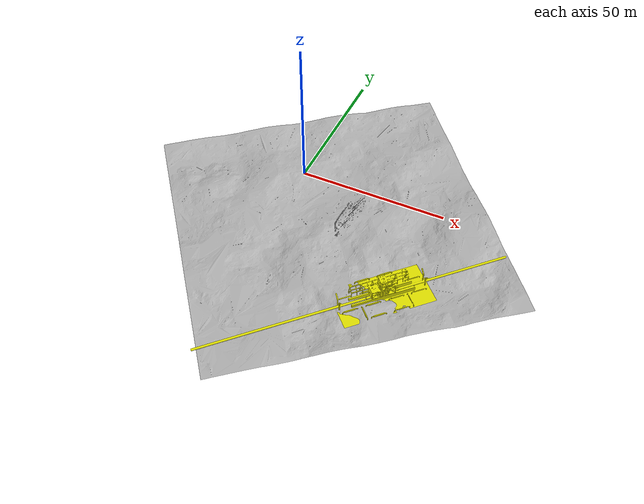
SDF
<sdf version="1.4">
 <world name="flat_fish">
  <physics type="ode">
   <max_step_size>0.01</max_step_size>
   <real_time_factor>1</real_time_factor>
   <real_time_update_rate>100</real_time_update_rate>
  </physics>
  <model name="nwu">
   <static>true</static>
   <link name="base"/>
   <link name="orientation"/>
   <joint name="__joint_orientation" type="fixed"><child>orientation</child><parent>base</parent></joint>
  </model>
  <model name="surface"><static>true</static></model>
  <model name="usbl"><static>true</static></model>
  <include><uri>model://simple_manifold</uri><pose>0 0 -20 0 0 0</pose></include>
  <include><uri>model://reflector</uri><pose>10 0 -5 0 -1.57 0</pose></include>
  <plugin name="underwater" filename="libgazebo_underwater.so">
   <model_name>flat_fish</model_name>
   <drag_coefficient>5 7.5 12.5</drag_coefficient>
   <link_name>flat_fish_body</link_name>
   <center_of_buoyancy>0 0 0.1</center_of_buoyancy>
   <buoyancy>18</buoyancy>
  </plugin>
 </world>
</sdf>

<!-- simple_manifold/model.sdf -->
<sdf version="1.4">
	<model name="simple_manifold">
		<static>true</static>
		<link name="terrain">
            <visual name="visual">
                <geometry>
                    <mesh>
                        <uri>model://simple_manifold/terrain.stl</uri>
                    </mesh>
                </geometry>
                <material>
                    <ambient>0.7 0.7 0.7 1</ambient>
                    <diffuse>0.7 0.7 0.7 1</diffuse>
                    <specular>0 0 0 0</specular>
                </material>
            </visual>
            <collision name="collision">
                <geometry>
                    <mesh>
                        <uri>model://simple_manifold/terrain.stl</uri>
                    </mesh>
                </geometry>
            </collision>
		</link>
        <link name="manifold">
            <pose>35 -10 -15 0 0 0.7854</pose>
            <visual name="visual">
                <geometry>
                    <mesh>
                        <uri>model://simple_manifold/manifold.stl</uri>
                    </mesh>
                </geometry>
                <material>
                    <ambient>0.8 0.8 0 1</ambient>
                    <diffuse>0.9 0.9 0 1</diffuse>
                    <specular>0 0 0 0</specular>
                </material>
            </visual>
            <collision name="collision">
                <geometry>
                    <mesh>
                        <uri>model://simple_manifold/manifold.stl</uri>
                    </mesh>
                </geometry>
            </collision>
        </link>
	</model>
</sdf>

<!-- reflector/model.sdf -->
<sdf version="1.4">
    <model name='reflector'>
        <static>true</static>
        <pose>0 0 0 0 0 0</pose>
	<link name='reflector'>
		<visual name='block1'>
			<pose>0 1.7 -2 0 0 0.785398</pose>
			<geometry>
				<box>
	                                <size>0.35 0.35 0.003</size>
				</box>
			</geometry>
			<material>
				<ambient>1 1 1 1</ambient>
				<diffuse>1 1 1 1</diffuse>
				<specular>1 1 1 1</specular>
			</material>
		</visual>
		<visual name='block2'>
			<pose>0 1.7 -2 1.5708 0.785398 0</pose>
			<geometry>
				<box>
	                                <size>0.35 0.35 0.003</size>
				</box>
			</geometry>
			<material>
				<ambient>1 1 1 1</ambient>
				<diffuse>1 1 1 1</diffuse>
				<specular>1 1 1 1</specular>
			</material>
		</visual>
		<visual name='block3'>
			<pose>0 1.7 -2 1.5708 0.785398 1.5708</pose>
			<geometry>
				<box>
	                                <size>0.35 0.35 0.003</size>
				</box>
			</geometry>
			<material>
				<ambient>1 1 1 1</ambient>
				<diffuse>1 1 1 1</diffuse>
				<specular>1 1 1 1</specular>
			</material>
		</visual>
		<visual name='block4'>
			<pose>0 1.7 2 0 0 0.785398</pose>
			<geometry>
				<box>
	                                <size>0.35 0.35 0.003</size>
				</box>
			</geometry>
			<material>
				<ambient>1 1 1 1</ambient>
				<diffuse>1 1 1 1</diffuse>
				<specular>1 1 1 1</specular>
			</material>
		</visual>
		<visual name='block5'>
			<pose>0 1.7 2 1.5708 0.785398 0</pose>
			<geometry>
				<box>
	                                <size>0.35 0.35 0.003</size>
				</box>
			</geometry>
			<material>
				<ambient>1 1 1 1</ambient>
				<diffuse>1 1 1 1</diffuse>
				<specular>1 1 1 1</specular>
			</material>
		</visual>
		<visual name='block6'>
			<pose>0 1.7 2 1.5708 0.785398 1.5708</pose>
			<geometry>
				<box>
	                                <size>0.35 0.35 0.003</size>
				</box>
			</geometry>
			<material>
				<ambient>1 1 1 1</ambient>
				<diffuse>1 1 1 1</diffuse>
				<specular>1 1 1 1</specular>
			</material>
		</visual>
		<visual name='block7'>
			<pose>0 -1.7 2 0 0 0.785398</pose>
			<geometry>
				<box>
	                                <size>0.35 0.35 0.003</size>
				</box>
			</geometry>
			<material>
				<ambient>1 1 1 1</ambient>
				<diffuse>1 1 1 1</diffuse>
				<specular>1 1 1 1</specular>
			</material>
		</visual>
		<visual name='block8'>
			<pose>0 -1.7 2 1.5708 0.785398 0</pose>
			<geometry>
				<box>
	                                <size>0.35 0.35 0.003</size>
				</box>
			</geometry>
			<material>
				<ambient>1 1 1 1</ambient>
				<diffuse>1 1 1 1</diffuse>
				<specular>1 1 1 1</specular>
			</material>
		</visual>
		<visual name='block9'>
			<pose>0 -1.7 2 1.5708 0.785398 1.5708</pose>
			<geometry>
				<box>
	                                <size>0.35 0.35 0.003</size>
				</box>
			</geometry>
			<material>
				<ambient>1 1 1 1</ambient>
				<diffuse>1 1 1 1</diffuse>
				<specular>1 1 1 1</specular>
			</material>
		</visual>
        </link>
    </model>
</sdf>
